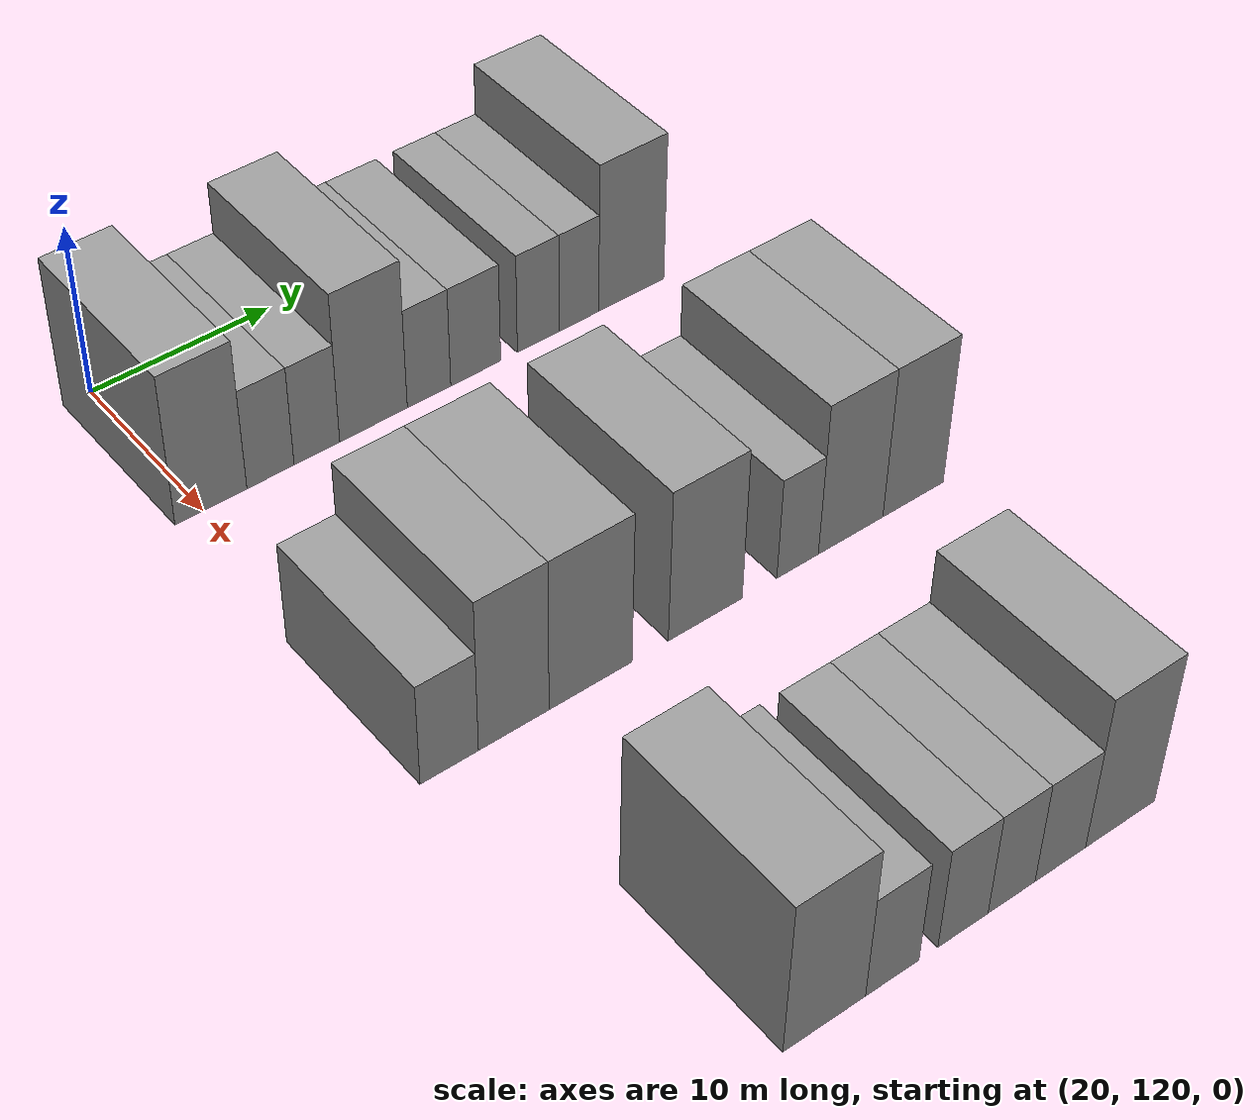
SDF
<sdf version="1.6">
 <world name="default">
  <model name="building_96">
   <static>1</static>
   <pose>25.0000 120.4184 0 0.000000 0.000000 0.000000</pose>
   <link name="link">
    <pose>0 0 4.50 0 0 0</pose>
    <collision name="collision"><geometry><box><size>10.0000 3.8398 9.0000</size></box></geometry></collision>
    <visual name="visual">
     <cast_shadows>0</cast_shadows>
     <geometry><box><size>10.0000 3.8398 9.0000</size></box></geometry>
     <material>
      <script>
       <uri>model://grey_wall/materials/scripts</uri>
       <uri>model://grey_wall/materials/textures</uri>
       <name>vrc/grey_wall</name>
      </script>
     </material>
    </visual>
   </link>
  </model>
  <model name="building_97">
   <static>1</static>
   <pose>25.0000 123.6236 0 0.000000 0.000000 0.000000</pose>
   <link name="link">
    <pose>0 0 3.00 0 0 0</pose>
    <collision name="collision"><geometry><box><size>10.0000 2.5706 6.0000</size></box></geometry></collision>
    <visual name="visual">
     <cast_shadows>0</cast_shadows>
     <geometry><box><size>10.0000 2.5706 6.0000</size></box></geometry>
     <material>
      <script>
       <uri>model://grey_wall/materials/scripts</uri>
       <uri>model://grey_wall/materials/textures</uri>
       <name>vrc/grey_wall</name>
      </script>
     </material>
    </visual>
   </link>
  </model>
  <model name="building_98">
   <static>1</static>
   <pose>25.0000 126.1742 0 0.000000 0.000000 0.000000</pose>
   <link name="link">
    <pose>0 0 3.00 0 0 0</pose>
    <collision name="collision"><geometry><box><size>10.0000 2.5305 6.0000</size></box></geometry></collision>
    <visual name="visual">
     <cast_shadows>0</cast_shadows>
     <geometry><box><size>10.0000 2.5305 6.0000</size></box></geometry>
     <material>
      <script>
       <uri>model://grey_wall/materials/scripts</uri>
       <uri>model://grey_wall/materials/textures</uri>
       <name>vrc/grey_wall</name>
      </script>
     </material>
    </visual>
   </link>
  </model>
  <model name="building_99">
   <static>1</static>
   <pose>25.0000 129.3551 0 0.000000 0.000000 0.000000</pose>
   <link name="link">
    <pose>0 0 4.50 0 0 0</pose>
    <collision name="collision"><geometry><box><size>10.0000 3.8312 9.0000</size></box></geometry></collision>
    <visual name="visual">
     <cast_shadows>0</cast_shadows>
     <geometry><box><size>10.0000 3.8312 9.0000</size></box></geometry>
     <material>
      <script>
       <uri>model://grey_wall/materials/scripts</uri>
       <uri>model://grey_wall/materials/textures</uri>
       <name>vrc/grey_wall</name>
      </script>
     </material>
    </visual>
   </link>
  </model>
  <model name="building_100">
   <static>1</static>
   <pose>25.0000 132.5282 0 0.000000 0.000000 0.000000</pose>
   <link name="link">
    <pose>0 0 3.00 0 0 0</pose>
    <collision name="collision"><geometry><box><size>10.0000 2.5151 6.0000</size></box></geometry></collision>
    <visual name="visual">
     <cast_shadows>0</cast_shadows>
     <geometry><box><size>10.0000 2.5151 6.0000</size></box></geometry>
     <material>
      <script>
       <uri>model://grey_wall/materials/scripts</uri>
       <uri>model://grey_wall/materials/textures</uri>
       <name>vrc/grey_wall</name>
      </script>
     </material>
    </visual>
   </link>
  </model>
  <model name="building_101">
   <static>1</static>
   <pose>25.0000 135.2540 0 0.000000 0.000000 0.000000</pose>
   <link name="link">
    <pose>0 0 3.00 0 0 0</pose>
    <collision name="collision"><geometry><box><size>10.0000 2.9367 6.0000</size></box></geometry></collision>
    <visual name="visual">
     <cast_shadows>0</cast_shadows>
     <geometry><box><size>10.0000 2.9367 6.0000</size></box></geometry>
     <material>
      <script>
       <uri>model://grey_wall/materials/scripts</uri>
       <uri>model://grey_wall/materials/textures</uri>
       <name>vrc/grey_wall</name>
      </script>
     </material>
    </visual>
   </link>
  </model>
  <model name="building_102">
   <static>1</static>
   <pose>25.0000 138.9803 0 0.000000 0.000000 0.000000</pose>
   <link name="link">
    <pose>0 0 3.00 0 0 0</pose>
    <collision name="collision"><geometry><box><size>10.0000 2.5159 6.0000</size></box></geometry></collision>
    <visual name="visual">
     <cast_shadows>0</cast_shadows>
     <geometry><box><size>10.0000 2.5159 6.0000</size></box></geometry>
     <material>
      <script>
       <uri>model://grey_wall/materials/scripts</uri>
       <uri>model://grey_wall/materials/textures</uri>
       <name>vrc/grey_wall</name>
      </script>
     </material>
    </visual>
   </link>
  </model>
  <model name="building_103">
   <static>1</static>
   <pose>25.0000 141.4532 0 0.000000 0.000000 0.000000</pose>
   <link name="link">
    <pose>0 0 3.00 0 0 0</pose>
    <collision name="collision"><geometry><box><size>10.0000 2.4300 6.0000</size></box></geometry></collision>
    <visual name="visual">
     <cast_shadows>0</cast_shadows>
     <geometry><box><size>10.0000 2.4300 6.0000</size></box></geometry>
     <material>
      <script>
       <uri>model://grey_wall/materials/scripts</uri>
       <uri>model://grey_wall/materials/textures</uri>
       <name>vrc/grey_wall</name>
      </script>
     </material>
    </visual>
   </link>
  </model>
  <model name="building_104">
   <static>1</static>
   <pose>25.0000 144.7032 0 0.000000 0.000000 0.000000</pose>
   <link name="link">
    <pose>0 0 4.50 0 0 0</pose>
    <collision name="collision"><geometry><box><size>10.0000 4.0700 9.0000</size></box></geometry></collision>
    <visual name="visual">
     <cast_shadows>0</cast_shadows>
     <geometry><box><size>10.0000 4.0700 9.0000</size></box></geometry>
     <material>
      <script>
       <uri>model://grey_wall/materials/scripts</uri>
       <uri>model://grey_wall/materials/textures</uri>
       <name>vrc/grey_wall</name>
      </script>
     </material>
    </visual>
   </link>
  </model>
  <model name="building_208">
   <static>1</static>
   <pose>44.0000 120.0853 0 0.000000 0.000000 0.000000</pose>
   <link name="link">
    <pose>0 0 3.00 0 0 0</pose>
    <collision name="collision"><geometry><box><size>10.0000 2.9732 6.0000</size></box></geometry></collision>
    <visual name="visual">
     <cast_shadows>0</cast_shadows>
     <geometry><box><size>10.0000 2.9732 6.0000</size></box></geometry>
     <material>
      <script>
       <uri>model://grey_wall/materials/scripts</uri>
       <uri>model://grey_wall/materials/textures</uri>
       <name>vrc/grey_wall</name>
      </script>
     </material>
    </visual>
   </link>
  </model>
  <model name="building_209">
   <static>1</static>
   <pose>44.0000 123.4156 0 0.000000 0.000000 0.000000</pose>
   <link name="link">
    <pose>0 0 4.50 0 0 0</pose>
    <collision name="collision"><geometry><box><size>10.0000 3.6874 9.0000</size></box></geometry></collision>
    <visual name="visual">
     <cast_shadows>0</cast_shadows>
     <geometry><box><size>10.0000 3.6874 9.0000</size></box></geometry>
     <material>
      <script>
       <uri>model://grey_wall/materials/scripts</uri>
       <uri>model://grey_wall/materials/textures</uri>
       <name>vrc/grey_wall</name>
      </script>
     </material>
    </visual>
   </link>
  </model>
  <model name="building_210">
   <static>1</static>
   <pose>44.0000 127.4901 0 0.000000 0.000000 0.000000</pose>
   <link name="link">
    <pose>0 0 4.50 0 0 0</pose>
    <collision name="collision"><geometry><box><size>10.0000 4.4616 9.0000</size></box></geometry></collision>
    <visual name="visual">
     <cast_shadows>0</cast_shadows>
     <geometry><box><size>10.0000 4.4616 9.0000</size></box></geometry>
     <material>
      <script>
       <uri>model://grey_wall/materials/scripts</uri>
       <uri>model://grey_wall/materials/textures</uri>
       <name>vrc/grey_wall</name>
      </script>
     </material>
    </visual>
   </link>
  </model>
  <model name="building_211">
   <static>1</static>
   <pose>44.0000 133.8030 0 0.000000 0.000000 0.000000</pose>
   <link name="link">
    <pose>0 0 4.50 0 0 0</pose>
    <collision name="collision"><geometry><box><size>10.0000 4.1641 9.0000</size></box></geometry></collision>
    <visual name="visual">
     <cast_shadows>0</cast_shadows>
     <geometry><box><size>10.0000 4.1641 9.0000</size></box></geometry>
     <material>
      <script>
       <uri>model://grey_wall/materials/scripts</uri>
       <uri>model://grey_wall/materials/textures</uri>
       <name>vrc/grey_wall</name>
      </script>
     </material>
    </visual>
   </link>
  </model>
  <model name="building_212">
   <static>1</static>
   <pose>44.0000 139.0987 0 0.000000 0.000000 0.000000</pose>
   <link name="link">
    <pose>0 0 3.00 0 0 0</pose>
    <collision name="collision"><geometry><box><size>10.0000 2.4273 6.0000</size></box></geometry></collision>
    <visual name="visual">
     <cast_shadows>0</cast_shadows>
     <geometry><box><size>10.0000 2.4273 6.0000</size></box></geometry>
     <material>
      <script>
       <uri>model://grey_wall/materials/scripts</uri>
       <uri>model://grey_wall/materials/textures</uri>
       <name>vrc/grey_wall</name>
      </script>
     </material>
    </visual>
   </link>
  </model>
  <model name="building_213">
   <static>1</static>
   <pose>44.0000 142.2443 0 0.000000 0.000000 0.000000</pose>
   <link name="link">
    <pose>0 0 4.50 0 0 0</pose>
    <collision name="collision"><geometry><box><size>10.0000 3.8640 9.0000</size></box></geometry></collision>
    <visual name="visual">
     <cast_shadows>0</cast_shadows>
     <geometry><box><size>10.0000 3.8640 9.0000</size></box></geometry>
     <material>
      <script>
       <uri>model://grey_wall/materials/scripts</uri>
       <uri>model://grey_wall/materials/textures</uri>
       <name>vrc/grey_wall</name>
      </script>
     </material>
    </visual>
   </link>
  </model>
  <model name="building_214">
   <static>1</static>
   <pose>44.0000 146.0235 0 0.000000 0.000000 0.000000</pose>
   <link name="link">
    <pose>0 0 4.50 0 0 0</pose>
    <collision name="collision"><geometry><box><size>10.0000 3.6944 9.0000</size></box></geometry></collision>
    <visual name="visual">
     <cast_shadows>0</cast_shadows>
     <geometry><box><size>10.0000 3.6944 9.0000</size></box></geometry>
     <material>
      <script>
       <uri>model://grey_wall/materials/scripts</uri>
       <uri>model://grey_wall/materials/textures</uri>
       <name>vrc/grey_wall</name>
      </script>
     </material>
    </visual>
   </link>
  </model>
  <model name="building_330">
   <static>1</static>
   <pose>63.0000 124.0671 0 0.000000 0.000000 0.000000</pose>
   <link name="link">
    <pose>0 0 4.50 0 0 0</pose>
    <collision name="collision"><geometry><box><size>10.0000 4.1838 9.0000</size></box></geometry></collision>
    <visual name="visual">
     <cast_shadows>0</cast_shadows>
     <geometry><box><size>10.0000 4.1838 9.0000</size></box></geometry>
     <material>
      <script>
       <uri>model://grey_wall/materials/scripts</uri>
       <uri>model://grey_wall/materials/textures</uri>
       <name>vrc/grey_wall</name>
      </script>
     </material>
    </visual>
   </link>
  </model>
  <model name="building_331">
   <static>1</static>
   <pose>63.0000 127.5478 0 0.000000 0.000000 0.000000</pose>
   <link name="link">
    <pose>0 0 3.00 0 0 0</pose>
    <collision name="collision"><geometry><box><size>10.0000 2.7776 6.0000</size></box></geometry></collision>
    <visual name="visual">
     <cast_shadows>0</cast_shadows>
     <geometry><box><size>10.0000 2.7776 6.0000</size></box></geometry>
     <material>
      <script>
       <uri>model://grey_wall/materials/scripts</uri>
       <uri>model://grey_wall/materials/textures</uri>
       <name>vrc/grey_wall</name>
      </script>
     </material>
    </visual>
   </link>
  </model>
  <model name="building_332">
   <static>1</static>
   <pose>63.0000 131.2821 0 0.000000 0.000000 0.000000</pose>
   <link name="link">
    <pose>0 0 3.00 0 0 0</pose>
    <collision name="collision"><geometry><box><size>10.0000 2.6912 6.0000</size></box></geometry></collision>
    <visual name="visual">
     <cast_shadows>0</cast_shadows>
     <geometry><box><size>10.0000 2.6912 6.0000</size></box></geometry>
     <material>
      <script>
       <uri>model://grey_wall/materials/scripts</uri>
       <uri>model://grey_wall/materials/textures</uri>
       <name>vrc/grey_wall</name>
      </script>
     </material>
    </visual>
   </link>
  </model>
  <model name="building_333">
   <static>1</static>
   <pose>63.0000 133.9129 0 0.000000 0.000000 0.000000</pose>
   <link name="link">
    <pose>0 0 3.00 0 0 0</pose>
    <collision name="collision"><geometry><box><size>10.0000 2.5704 6.0000</size></box></geometry></collision>
    <visual name="visual">
     <cast_shadows>0</cast_shadows>
     <geometry><box><size>10.0000 2.5704 6.0000</size></box></geometry>
     <material>
      <script>
       <uri>model://grey_wall/materials/scripts</uri>
       <uri>model://grey_wall/materials/textures</uri>
       <name>vrc/grey_wall</name>
      </script>
     </material>
    </visual>
   </link>
  </model>
  <model name="building_334">
   <static>1</static>
   <pose>63.0000 136.6110 0 0.000000 0.000000 0.000000</pose>
   <link name="link">
    <pose>0 0 3.00 0 0 0</pose>
    <collision name="collision"><geometry><box><size>10.0000 2.8259 6.0000</size></box></geometry></collision>
    <visual name="visual">
     <cast_shadows>0</cast_shadows>
     <geometry><box><size>10.0000 2.8259 6.0000</size></box></geometry>
     <material>
      <script>
       <uri>model://grey_wall/materials/scripts</uri>
       <uri>model://grey_wall/materials/textures</uri>
       <name>vrc/grey_wall</name>
      </script>
     </material>
    </visual>
   </link>
  </model>
  <model name="building_335">
   <static>1</static>
   <pose>63.0000 140.0015 0 0.000000 0.000000 0.000000</pose>
   <link name="link">
    <pose>0 0 4.50 0 0 0</pose>
    <collision name="collision"><geometry><box><size>10.0000 3.9550 9.0000</size></box></geometry></collision>
    <visual name="visual">
     <cast_shadows>0</cast_shadows>
     <geometry><box><size>10.0000 3.9550 9.0000</size></box></geometry>
     <material>
      <script>
       <uri>model://grey_wall/materials/scripts</uri>
       <uri>model://grey_wall/materials/textures</uri>
       <name>vrc/grey_wall</name>
      </script>
     </material>
    </visual>
   </link>
  </model>
 </world>
</sdf>
